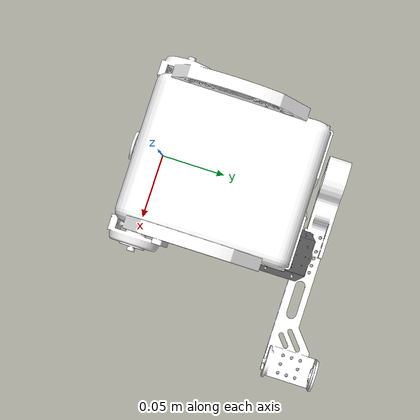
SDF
<sdf version='1.11'>
  <model name='new_left'>
    <link name='chest'>
      <inertial>
        <pose>0.0032745999999999999 0.00012116 -0.025058 0 0 0</pose>
        <mass>0.53190999999999999</mass>
        <inertia>
          <ixx>0.00044412999999999999</ixx>
          <ixy>-1.2131999999999999e-09</ixy>
          <ixz>-2.7091999999999998e-06</ixz>
          <iyy>0.00038389000000000001</iyy>
          <iyz>-3.0170000000000001e-07</iyz>
          <izz>0.00029428000000000001</izz>
        </inertia>
      </inertial>
      <collision name='chest_collision'>
        <pose>0 0 0 0 0 0</pose>
        <geometry>
          <mesh>
            <scale>1 1 1</scale>
            <uri>meshes/chest.STL</uri>
          </mesh>
        </geometry>
      </collision>
      <visual name='chest_visual'>
        <pose>0 0 0 0 0 0</pose>
        <geometry>
          <mesh>
            <scale>1 1 1</scale>
            <uri>meshes/chest.STL</uri>
          </mesh>
        </geometry>
        <material>
          <diffuse>1 1 1 1</diffuse>
          <ambient>1 1 1 1</ambient>
        </material>
      </visual>
    </link>
    <joint name='left_arm_upper' type='revolute'>
      <pose relative_to='chest'>0.0134 0.077899999999999997 0 0 0 0</pose>
      <parent>chest</parent>
      <child>left_shoulder</child>
      <axis>
        <xyz>0 1 0</xyz>
        <limit>
          <lower>0</lower>
          <upper>0</upper>
          <effort>0</effort>
          <velocity>0</velocity>
        </limit>
        <dynamics>
          <spring_reference>0</spring_reference>
          <spring_stiffness>0</spring_stiffness>
        </dynamics>
      </axis>
    </joint>
    <link name='left_shoulder'>
      <pose relative_to='left_arm_upper'>0 0 0 0 0 0</pose>
      <inertial>
        <pose>-3.4807000000000002e-09 0.023605999999999999 -0.0044032000000000003 0 0 0</pose>
        <mass>0.044031000000000001</mass>
        <inertia>
          <ixx>1.2764e-05</ixx>
          <ixy>-6.4513999999999998e-12</ixy>
          <ixz>-2.33e-11</ixz>
          <iyy>1.5491000000000001e-05</iyy>
          <iyz>2.6081999999999999e-06</iyz>
          <izz>1.2414e-05</izz>
        </inertia>
      </inertial>
      <collision name='left_shoulder_collision'>
        <pose>0 0 0 0 0 0</pose>
        <geometry>
          <mesh>
            <scale>1 1 1</scale>
            <uri>meshes/left_shoulder.STL</uri>
          </mesh>
        </geometry>
      </collision>
      <visual name='left_shoulder_visual'>
        <pose>0 0 0 0 0 0</pose>
        <geometry>
          <mesh>
            <scale>1 1 1</scale>
            <uri>meshes/left_shoulder.STL</uri>
          </mesh>
        </geometry>
        <material>
          <diffuse>1 1 1 1</diffuse>
          <ambient>1 1 1 1</ambient>
        </material>
      </visual>
    </link>
    <joint name='left_arm_middle' type='revolute'>
      <pose relative_to='left_shoulder'>0.0281 0.0258 -0.029000000000000001 0 0 0</pose>
      <parent>left_shoulder</parent>
      <child>left_arm</child>
      <axis>
        <xyz>-1 0 0</xyz>
        <limit>
          <lower>0</lower>
          <upper>0</upper>
          <effort>0</effort>
          <velocity>0</velocity>
        </limit>
        <dynamics>
          <spring_reference>0</spring_reference>
          <spring_stiffness>0</spring_stiffness>
        </dynamics>
      </axis>
    </joint>
    <link name='left_arm'>
      <pose relative_to='left_arm_middle'>0 0 0 0 0 0</pose>
      <inertial>
        <pose>-0.027900000000000001 2.8453e-05 -0.046835000000000002 0 0 0</pose>
        <mass>0.14643999999999999</mass>
        <inertia>
          <ixx>5.2957000000000001e-05</ixx>
          <ixy>6.2608e-11</ixy>
          <ixz>-2.0249999999999999e-07</ixz>
          <iyy>5.8520000000000002e-05</iyy>
          <iyz>1.1014000000000001e-07</iyz>
          <izz>3.6597000000000002e-05</izz>
        </inertia>
      </inertial>
      <collision name='left_arm_collision'>
        <pose>0 0 0 0 0 0</pose>
        <geometry>
          <mesh>
            <scale>1 1 1</scale>
            <uri>meshes/left_arm.STL</uri>
          </mesh>
        </geometry>
      </collision>
      <visual name='left_arm_visual'>
        <pose>0 0 0 0 0 0</pose>
        <geometry>
          <mesh>
            <scale>1 1 1</scale>
            <uri>meshes/left_arm.STL</uri>
          </mesh>
        </geometry>
        <material>
          <diffuse>0.313724995 0.313724995 0.313724995 1</diffuse>
          <ambient>0.313724995 0.313724995 0.313724995 1</ambient>
        </material>
      </visual>
    </link>
    <joint name='left_arm_lower' type='revolute'>
      <pose relative_to='left_arm'>-0.0281 0.023349999999999999 -0.1076 0 0 0</pose>
      <parent>left_arm</parent>
      <child>left_hand</child>
      <axis>
        <xyz>0 1 0</xyz>
        <limit>
          <lower>0</lower>
          <upper>0</upper>
          <effort>0</effort>
          <velocity>0</velocity>
        </limit>
        <dynamics>
          <spring_reference>0</spring_reference>
          <spring_stiffness>0</spring_stiffness>
        </dynamics>
      </axis>
    </joint>
    <link name='left_hand'>
      <pose relative_to='left_arm_lower'>0 0 0 0 0 0</pose>
      <inertial>
        <pose>0.070329000000000003 -0.014057 -0.021406999999999999 0 0 0</pose>
        <mass>0.064269999999999994</mass>
        <inertia>
          <ixx>1.2951e-05</ixx>
          <ixy>-2.5065000000000001e-06</ixy>
          <ixz>-3.8137999999999999e-07</ixz>
          <iyy>5.8740999999999999e-05</iyy>
          <iyz>1.7884999999999999e-12</iyz>
          <izz>6.1017999999999998e-05</izz>
        </inertia>
      </inertial>
      <collision name='left_hand_collision'>
        <pose>0 0 0 0 0 0</pose>
        <geometry>
          <mesh>
            <scale>1 1 1</scale>
            <uri>meshes/left_hand.STL</uri>
          </mesh>
        </geometry>
      </collision>
      <visual name='left_hand_visual'>
        <pose>0 0 0 0 0 0</pose>
        <geometry>
          <mesh>
            <scale>1 1 1</scale>
            <uri>meshes/left_hand.STL</uri>
          </mesh>
        </geometry>
        <material>
          <diffuse>1 1 1 1</diffuse>
          <ambient>1 1 1 1</ambient>
        </material>
      </visual>
    </link>
  </model>
</sdf>
